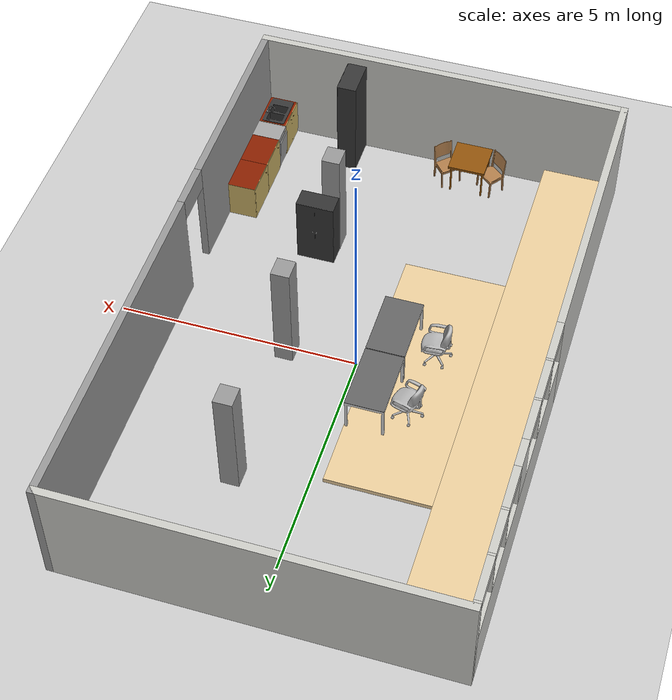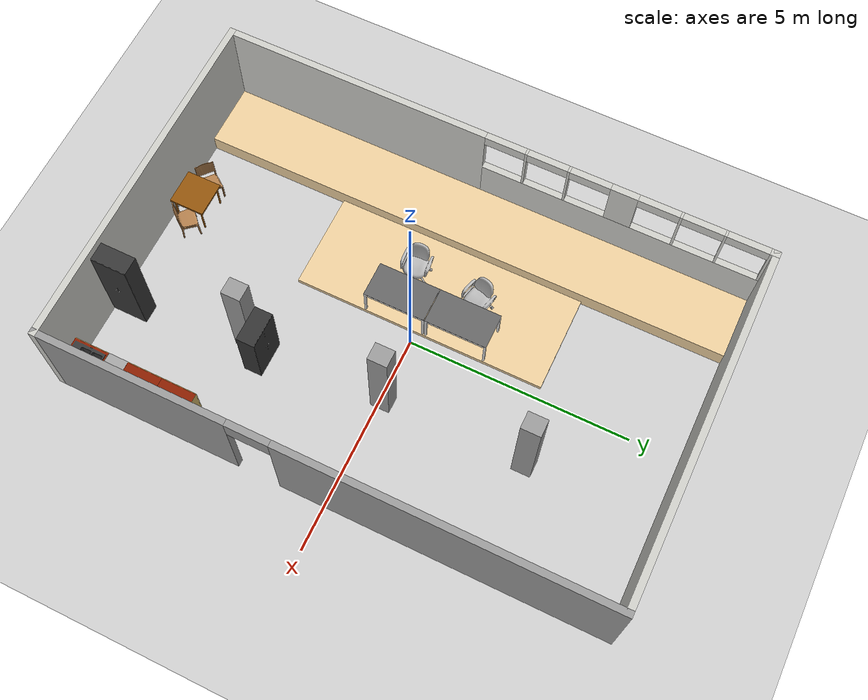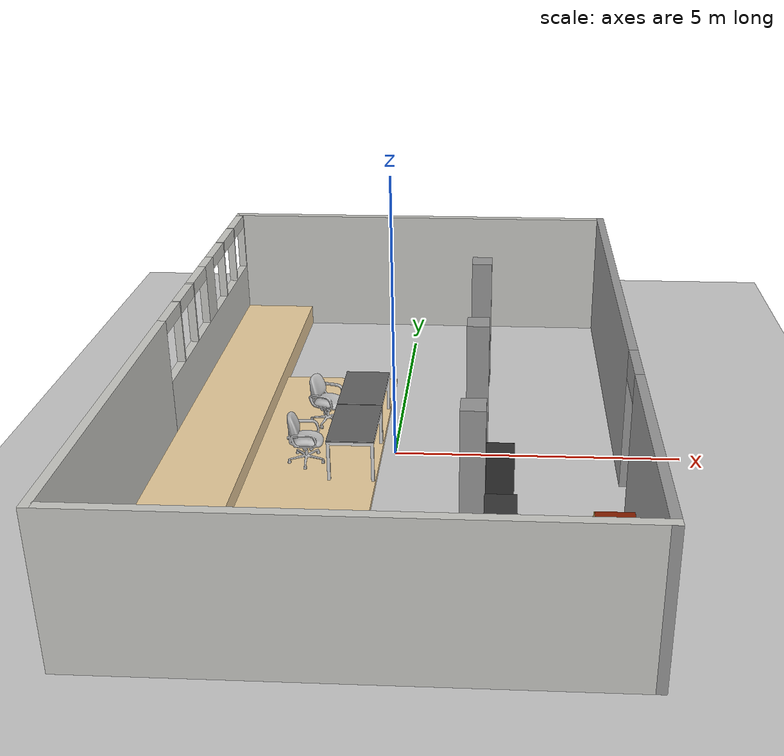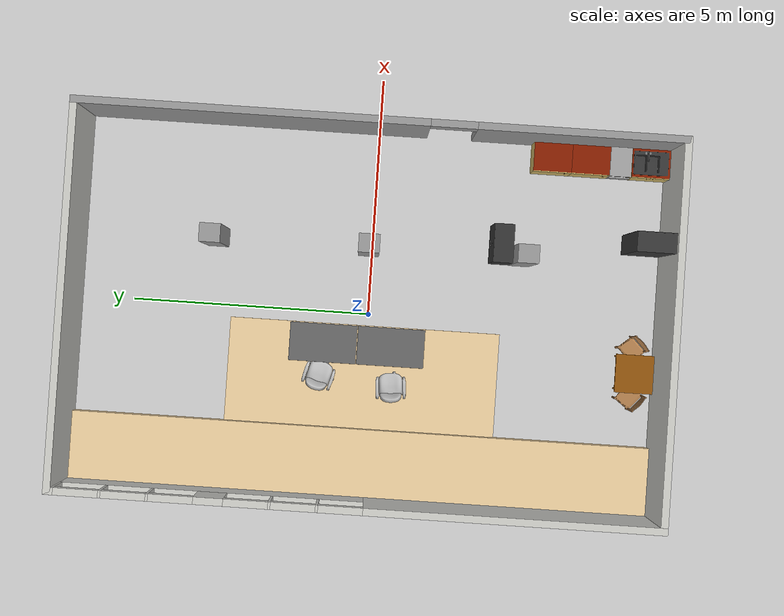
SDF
<sdf version="1.6">
 <world name="default">
  <light name="sun" type="directional">
   <pose>0 0 10 0 -0 0</pose>
   <diffuse>0.8 0.8 0.8 1</diffuse>
   <specular>0.1 0.1 0.1 1</specular>
   <attenuation>
    <range>1000</range>
    <constant>0.9</constant>
    <linear>0.01</linear>
    <quadratic>0.001</quadratic>
   </attenuation>
   <direction>-0.5 0.5 -1</direction>
  </light>
  <model name="ground_plane">
   <static>1</static>
   <link name="link">
    <collision name="collision">
     <geometry><plane><normal>0 0 1</normal><size>100 100</size></plane></geometry>
     <surface><friction><ode><mu>100</mu><mu2>50</mu2></ode></friction></surface>
    </collision>
    <visual name="visual">
     <cast_shadows>0</cast_shadows>
     <geometry><plane><normal>0 0 1</normal><size>100 100</size></plane></geometry>
     <material>
      <script><uri>file://media/materials/scripts/gazebo.material</uri><name>Gazebo/Grey</name></script>
     </material>
    </visual>
   </link>
  </model>
  <gravity>0 0 -9.8</gravity>
  <magnetic_field>6e-06 2.3e-05 -4.2e-05</magnetic_field>
  <atmosphere type="adiabatic"/>
  <physics name="default_physics" default="0" type="ode">
   <max_step_size>0.001</max_step_size>
   <real_time_factor>1</real_time_factor>
   <real_time_update_rate>1000</real_time_update_rate>
  </physics>
  <scene><ambient>0.4 0.4 0.4 1</ambient><background>0.7 0.7 0.7 1</background><shadows>1</shadows></scene>
  <spherical_coordinates>
   <surface_model>EARTH_WGS84</surface_model>
   <latitude_deg>0</latitude_deg>
   <longitude_deg>0</longitude_deg>
   <elevation>0</elevation>
   <heading_deg>0</heading_deg>
  </spherical_coordinates>
  <model name="012">
   <pose>0 0 0 0 -0 1.5708</pose>
   <link name="Wall_0">
    <collision name="Wall_0_Collision">
     <geometry><box><size>8 0.15 2.5</size></box></geometry>
     <pose>0 0 1.25 0 -0 0</pose>
    </collision>
    <visual name="Wall_0_Visual">
     <pose>0 0 1.25 0 -0 0</pose>
     <geometry><box><size>8 0.15 2.5</size></box></geometry>
     <material>
      <script><uri>file://media/materials/scripts/gazebo.material</uri><name>Gazebo/CeilingTiled</name></script>
      <ambient>1 1 1 1</ambient>
     </material>
    </visual>
    <pose>-6.175 0 0 0 -0 1.5708</pose>
   </link>
   <link name="Wall_1">
    <pose>0 3.925 0 0 -0 0</pose>
    <visual name="Wall_1_Visual_0">
     <pose>-3.19976 0 1.25 0 -0 0</pose>
     <geometry><box><size>6.10047 0.15 2.5</size></box></geometry>
     <material>
      <script><uri>file://media/materials/scripts/gazebo.material</uri><name>Gazebo/CeilingTiled</name></script>
      <ambient>1 1 1 1</ambient>
     </material>
    </visual>
    <collision name="Wall_1_Collision_0">
     <geometry><box><size>6.10047 0.15 2.5</size></box></geometry>
     <pose>-3.19976 0 1.25 0 -0 0</pose>
    </collision>
    <visual name="Wall_1_Visual_1">
     <pose>3.05024 0 0.675 0 -0 0</pose>
     <geometry><box><size>6.39953 0.15 1.35</size></box></geometry>
     <material>
      <script><uri>file://media/materials/scripts/gazebo.material</uri><name>Gazebo/CeilingTiled</name></script>
      <ambient>1 1 1 1</ambient>
     </material>
    </visual>
    <collision name="Wall_1_Collision_1">
     <geometry><box><size>6.39953 0.15 1.35</size></box></geometry>
     <pose>3.05024 0 0.675 0 -0 0</pose>
    </collision>
    <visual name="Wall_1_Visual_2">
     <pose>0.775327 0 1.925 0 -0 0</pose>
     <geometry><box><size>0.049707 0.15 1.15</size></box></geometry>
     <material>
      <script><uri>file://media/materials/scripts/gazebo.material</uri><name>Gazebo/CeilingTiled</name></script>
      <ambient>1 1 1 1</ambient>
     </material>
    </visual>
    <collision name="Wall_1_Collision_2">
     <geometry><box><size>0.049707 0.15 1.15</size></box></geometry>
     <pose>0.775327 0 1.925 0 -0 0</pose>
    </collision>
    <visual name="Wall_1_Visual_3">
     <pose>1.7249 0 1.925 0 -0 0</pose>
     <geometry><box><size>0.049436 0.15 1.15</size></box></geometry>
     <material>
      <script><uri>file://media/materials/scripts/gazebo.material</uri><name>Gazebo/CeilingTiled</name></script>
      <ambient>1 1 1 1</ambient>
     </material>
    </visual>
    <collision name="Wall_1_Collision_3">
     <geometry><box><size>0.049436 0.15 1.15</size></box></geometry>
     <pose>1.7249 0 1.925 0 -0 0</pose>
    </collision>
    <visual name="Wall_1_Visual_4">
     <pose>2.9496 0 1.925 0 -0 0</pose>
     <geometry><box><size>0.599959 0.15 1.15</size></box></geometry>
     <material>
      <script><uri>file://media/materials/scripts/gazebo.material</uri><name>Gazebo/CeilingTiled</name></script>
      <ambient>1 1 1 1</ambient>
     </material>
    </visual>
    <collision name="Wall_1_Collision_4">
     <geometry><box><size>0.599959 0.15 1.15</size></box></geometry>
     <pose>2.9496 0 1.925 0 -0 0</pose>
    </collision>
    <visual name="Wall_1_Visual_5">
     <pose>4.17483 0 1.925 0 -0 0</pose>
     <geometry><box><size>0.050519 0.15 1.15</size></box></geometry>
     <material>
      <script><uri>file://media/materials/scripts/gazebo.material</uri><name>Gazebo/CeilingTiled</name></script>
      <ambient>1 1 1 1</ambient>
     </material>
    </visual>
    <collision name="Wall_1_Collision_5">
     <geometry><box><size>0.050519 0.15 1.15</size></box></geometry>
     <pose>4.17483 0 1.925 0 -0 0</pose>
    </collision>
    <visual name="Wall_1_Visual_6">
     <pose>5.12512 0 1.925 0 -0 0</pose>
     <geometry><box><size>0.050049 0.15 1.15</size></box></geometry>
     <material>
      <script><uri>file://media/materials/scripts/gazebo.material</uri><name>Gazebo/CeilingTiled</name></script>
      <ambient>1 1 1 1</ambient>
     </material>
    </visual>
    <collision name="Wall_1_Collision_6">
     <geometry><box><size>0.050049 0.15 1.15</size></box></geometry>
     <pose>5.12512 0 1.925 0 -0 0</pose>
    </collision>
    <visual name="Wall_1_Visual_7">
     <pose>6.15007 0 1.925 0 -0 0</pose>
     <geometry><box><size>0.199856 0.15 1.15</size></box></geometry>
     <material>
      <script><uri>file://media/materials/scripts/gazebo.material</uri><name>Gazebo/CeilingTiled</name></script>
      <ambient>1 1 1 1</ambient>
     </material>
    </visual>
    <collision name="Wall_1_Collision_7">
     <geometry><box><size>0.199856 0.15 1.15</size></box></geometry>
     <pose>6.15007 0 1.925 0 -0 0</pose>
    </collision>
    <visual name="Wall_1_Visual_8">
     <pose>0.300473 0 2.375 0 -0 0</pose>
     <geometry><box><size>0.9 0.15 0.25</size></box></geometry>
     <material>
      <script><uri>file://media/materials/scripts/gazebo.material</uri><name>Gazebo/CeilingTiled</name></script>
      <ambient>1 1 1 1</ambient>
     </material>
    </visual>
    <collision name="Wall_1_Collision_8">
     <geometry><box><size>0.9 0.15 0.25</size></box></geometry>
     <pose>0.300473 0 2.375 0 -0 0</pose>
    </collision>
    <visual name="Wall_1_Visual_9">
     <pose>1.25018 0 2.375 0 -0 0</pose>
     <geometry><box><size>0.9 0.15 0.25</size></box></geometry>
     <material>
      <script><uri>file://media/materials/scripts/gazebo.material</uri><name>Gazebo/CeilingTiled</name></script>
      <ambient>1 1 1 1</ambient>
     </material>
    </visual>
    <collision name="Wall_1_Collision_9">
     <geometry><box><size>0.9 0.15 0.25</size></box></geometry>
     <pose>1.25018 0 2.375 0 -0 0</pose>
    </collision>
    <visual name="Wall_1_Visual_10">
     <pose>2.19962 0 2.375 0 -0 0</pose>
     <geometry><box><size>0.9 0.15 0.25</size></box></geometry>
     <material>
      <script><uri>file://media/materials/scripts/gazebo.material</uri><name>Gazebo/CeilingTiled</name></script>
      <ambient>1 1 1 1</ambient>
     </material>
    </visual>
    <collision name="Wall_1_Collision_10">
     <geometry><box><size>0.9 0.15 0.25</size></box></geometry>
     <pose>2.19962 0 2.375 0 -0 0</pose>
    </collision>
    <visual name="Wall_1_Visual_11">
     <pose>3.69958 0 2.375 0 -0 0</pose>
     <geometry><box><size>0.9 0.15 0.25</size></box></geometry>
     <material>
      <script><uri>file://media/materials/scripts/gazebo.material</uri><name>Gazebo/CeilingTiled</name></script>
      <ambient>1 1 1 1</ambient>
     </material>
    </visual>
    <collision name="Wall_1_Collision_11">
     <geometry><box><size>0.9 0.15 0.25</size></box></geometry>
     <pose>3.69958 0 2.375 0 -0 0</pose>
    </collision>
    <visual name="Wall_1_Visual_12">
     <pose>4.65009 0 2.375 0 -0 0</pose>
     <geometry><box><size>0.9 0.15 0.25</size></box></geometry>
     <material>
      <script><uri>file://media/materials/scripts/gazebo.material</uri><name>Gazebo/CeilingTiled</name></script>
      <ambient>1 1 1 1</ambient>
     </material>
    </visual>
    <collision name="Wall_1_Collision_12">
     <geometry><box><size>0.9 0.15 0.25</size></box></geometry>
     <pose>4.65009 0 2.375 0 -0 0</pose>
    </collision>
    <visual name="Wall_1_Visual_13">
     <pose>5.60014 0 2.375 0 -0 0</pose>
     <geometry><box><size>0.9 0.15 0.25</size></box></geometry>
     <material>
      <script><uri>file://media/materials/scripts/gazebo.material</uri><name>Gazebo/CeilingTiled</name></script>
      <ambient>1 1 1 1</ambient>
     </material>
    </visual>
    <collision name="Wall_1_Collision_13">
     <geometry><box><size>0.9 0.15 0.25</size></box></geometry>
     <pose>5.60014 0 2.375 0 -0 0</pose>
    </collision>
   </link>
   <link name="Wall_2">
    <collision name="Wall_2_Collision">
     <geometry><box><size>8 0.15 2.5</size></box></geometry>
     <pose>0 0 1.25 0 -0 0</pose>
    </collision>
    <visual name="Wall_2_Visual">
     <pose>0 0 1.25 0 -0 0</pose>
     <geometry><box><size>8 0.15 2.5</size></box></geometry>
     <material>
      <script><uri>file://media/materials/scripts/gazebo.material</uri><name>Gazebo/CeilingTiled</name></script>
      <ambient>1 1 1 1</ambient>
     </material>
    </visual>
    <pose>6.175 0 0 0 0 -1.5708</pose>
   </link>
   <link name="Wall_3">
    <pose>0 -3.925 0 0 -0 3.14159</pose>
    <visual name="Wall_3_Visual_0">
     <pose>-2.6248 0 1.25 0 -0 0</pose>
     <geometry><box><size>7.25041 0.15 2.5</size></box></geometry>
     <material>
      <script><uri>file://media/materials/scripts/gazebo.material</uri><name>Gazebo/Grey</name></script>
      <ambient>1 1 1 1</ambient>
     </material>
    </visual>
    <collision name="Wall_3_Collision_0">
     <geometry><box><size>7.25041 0.15 2.5</size></box></geometry>
     <pose>-2.6248 0 1.25 0 -0 0</pose>
    </collision>
    <visual name="Wall_3_Visual_1">
     <pose>4.1002 0 1.25 0 -0 0</pose>
     <geometry><box><size>4.29959 0.15 2.5</size></box></geometry>
     <material>
      <script><uri>file://media/materials/scripts/gazebo.material</uri><name>Gazebo/Grey</name></script>
      <ambient>1 1 1 1</ambient>
     </material>
    </visual>
    <collision name="Wall_3_Collision_1">
     <geometry><box><size>4.29959 0.15 2.5</size></box></geometry>
     <pose>4.1002 0 1.25 0 -0 0</pose>
    </collision>
    <visual name="Wall_3_Visual_2">
     <pose>1.47541 0 2.25 0 -0 0</pose>
     <geometry><box><size>0.95 0.15 0.5</size></box></geometry>
     <material>
      <script><uri>file://media/materials/scripts/gazebo.material</uri><name>Gazebo/Grey</name></script>
      <ambient>1 1 1 1</ambient>
     </material>
    </visual>
    <collision name="Wall_3_Collision_2">
     <geometry><box><size>0.95 0.15 0.5</size></box></geometry>
     <pose>1.47541 0 2.25 0 -0 0</pose>
    </collision>
   </link>
   <static>1</static>
  </model>
  <model name="012_step_back">
   <pose>-3.15276 0 0 0 -0 1.5708</pose>
   <link name="Stairs_5">
    <visual name="Stairs_5_Visual_0">
     <pose>0 0 0.2 0 -0 0</pose>
     <geometry><box><size>12.387 1.451 0.4</size></box></geometry>
     <material>
      <script><uri>file://media/materials/scripts/gazebo.material</uri><name>Gazebo/Grey</name></script>
      <ambient>0.921569 0.807843 0.615686 1</ambient>
     </material>
    </visual>
    <collision name="Stairs_5_Collision_0">
     <geometry><box><size>12.387 1.451 0.4</size></box></geometry>
     <pose>0 0 0.2 0 -0 0</pose>
    </collision>
   </link>
   <static>1</static>
  </model>
  <model name="012_step_central">
   <pose>-1.40245 0.05011 0 0 -0 1.5708</pose>
   <link name="Stairs_3">
    <visual name="Stairs_3_Visual_0">
     <pose>0 0 0.05 0 -0 0</pose>
     <geometry><box><size>5.735 2.335 0.1</size></box></geometry>
     <material>
      <script><uri>file://media/materials/scripts/gazebo.material</uri><name>Gazebo/Grey</name></script>
      <ambient>0.921569 0.807843 0.615686 1</ambient>
     </material>
    </visual>
    <collision name="Stairs_3_Collision_0">
     <geometry><box><size>5.735 2.335 0.1</size></box></geometry>
     <pose>0 0 0.05 0 -0 0</pose>
    </collision>
   </link>
   <static>1</static>
  </model>
  <model name="012_pillar">
   <pose>1.4352 -3.125 0 0 0 -1.5708</pose>
   <link name="Wall_6">
    <collision name="Wall_6_Collision">
     <geometry><box><size>0.43 0.38 2.5</size></box></geometry>
     <pose>0 0 1.25 0 -0 0</pose>
    </collision>
    <visual name="Wall_6_Visual">
     <pose>0 0 1.25 0 -0 0</pose>
     <geometry><box><size>0.43 0.38 2.5</size></box></geometry>
     <material>
      <script><uri>file://media/materials/scripts/gazebo.material</uri><name>Gazebo/Grey</name></script>
      <ambient>1 1 1 1</ambient>
     </material>
    </visual>
   </link>
   <static>1</static>
  </model>
  <model name="012_pillar_clone">
   <pose>1.4352 0.075 0 0 0 -1.5708</pose>
   <link name="Wall_6">
    <collision name="Wall_6_Collision">
     <geometry><box><size>0.43 0.38 2.5</size></box></geometry>
     <pose>0 0 1.25 0 -0 0</pose>
    </collision>
    <visual name="Wall_6_Visual">
     <pose>0 0 1.25 0 -0 0</pose>
     <geometry><box><size>0.43 0.38 2.5</size></box></geometry>
     <material>
      <script><uri>file://media/materials/scripts/gazebo.material</uri><name>Gazebo/Grey</name></script>
      <ambient>1 1 1 1</ambient>
     </material>
    </visual>
   </link>
   <static>1</static>
  </model>
  <model name="012_pillar_clone_clone">
   <pose>1.4352 3.275 0 0 0 -1.5708</pose>
   <link name="Wall_6">
    <collision name="Wall_6_Collision">
     <geometry><box><size>0.43 0.38 2.5</size></box></geometry>
     <pose>0 0 1.25 0 -0 0</pose>
    </collision>
    <visual name="Wall_6_Visual">
     <pose>0 0 1.25 0 -0 0</pose>
     <geometry><box><size>0.43 0.38 2.5</size></box></geometry>
     <material>
      <script><uri>file://media/materials/scripts/gazebo.material</uri><name>Gazebo/Grey</name></script>
      <ambient>1 1 1 1</ambient>
     </material>
    </visual>
   </link>
   <static>1</static>
  </model>
  <model name="rectangle_table">
   <static>1</static>
   <link name="rectangle_table">
    <collision name="surface">
     <pose>0 0 0.7 0 -0 0</pose>
     <geometry><box><size>1.4 0.8 0.079</size></box></geometry>
     <surface><friction><ode><mu>0.6</mu><mu2>0.6</mu2></ode></friction></surface>
    </collision>
    <collision name="left_front_leg">
     <pose>-0.6764 0.3733 0.3305 0 -0 0</pose>
     <geometry><box><size>0.0467 0.0534 0.661</size></box></geometry>
    </collision>
    <collision name="right_front_leg">
     <pose>0.6764 0.3733 0.3305 0 -0 0</pose>
     <geometry><box><size>0.0467 0.0534 0.661</size></box></geometry>
    </collision>
    <collision name="left_back_leg">
     <pose>-0.6764 -0.3733 0.3305 0 -0 0</pose>
     <geometry><box><size>0.0467 0.0534 0.661</size></box></geometry>
    </collision>
    <collision name="right_back_leg">
     <pose>0.6764 -0.3733 0.3305 0 -0 0</pose>
     <geometry><box><size>0.0467 0.0534 0.661</size></box></geometry>
    </collision>
    <visual name="rectangle_table_mesh">
     <geometry><mesh><uri>model://rectangle_table/meshes/model.dae</uri><scale>1 1 1</scale></mesh></geometry>
    </visual>
   </link>
   <pose>-0.647988 -0.512943 0.1 0 0 -1.5708</pose>
  </model>
  <model name="locker_high">
   <static>1</static>
   <link name="locker_high">
    <collision name="locker_high">
     <pose>0 0 1.15 0 -0 0</pose>
     <geometry><box><size>0.44 0.8 2.3</size></box></geometry>
    </collision>
    <visual name="locker_high_mesh">
     <geometry><mesh><uri>model://locker_high/meshes/model.dae</uri><scale>1 1 1</scale></mesh></geometry>
    </visual>
   </link>
   <pose>1.8452 -5.7 0 0 -0 0</pose>
  </model>
  <model name="locker_small">
   <static>1</static>
   <link name="locker_small">
    <collision name="locker_small">
     <pose>0 0 0.775 0 -0 0</pose>
     <geometry><box><size>0.44 0.8 1.55</size></box></geometry>
    </collision>
    <visual name="locker_small_mesh">
     <geometry><mesh><uri>model://locker_small/meshes/model.dae</uri><scale>1 1 1</scale></mesh></geometry>
    </visual>
   </link>
   <pose>1.65271 -2.6794 0 0 -0 1.5708</pose>
  </model>
  <model name="sink">
   <static>1</static>
   <link name="sink">
    <collision name="sink">
     <pose>0 0 0.4398 0 -0 0</pose>
     <geometry><box><size>0.64 0.8 0.8796</size></box></geometry>
    </collision>
    <collision name="tap">
     <pose>-0.15 -0.0775 0.9746 0 -0 0</pose>
     <geometry><box><size>0.22 0.13 0.19</size></box></geometry>
    </collision>
    <visual name="sink_mesh">
     <geometry><mesh><uri>model://sink/meshes/model.dae</uri><scale>1 1 1</scale></mesh></geometry>
    </visual>
   </link>
   <pose>3.52998 -5.69531 0 0 0 -3.14159</pose>
  </model>
  <model name="dishwasher">
   <static>1</static>
   <link name="dishwasher">
    <collision name="dishwasher">
     <pose>0 0 0.425 0 -0 0</pose>
     <geometry><box><size>0.65 0.45 0.85</size></box></geometry>
    </collision>
    <visual name="dishwasher_mesh">
     <geometry><mesh><uri>model://dishwasher/meshes/model.dae</uri><scale>1 1 1</scale></mesh></geometry>
    </visual>
   </link>
   <pose>3.52499 -5.07031 0 0 0 -3.14159</pose>
  </model>
  <model name="cupboard">
   <static>1</static>
   <link name="cupboard">
    <collision name="cupboard">
     <pose>0 0 0.425 0 -0 0</pose>
     <geometry><box><size>0.64 0.8 0.85</size></box></geometry>
    </collision>
    <visual name="cupboard_mesh">
     <geometry><mesh><uri>model://cupboard/meshes/model.dae</uri><scale>1 1 1</scale></mesh></geometry>
    </visual>
   </link>
   <pose>3.52999 -4.44463 0 0 -0 3.14159</pose>
  </model>
  <model name="cupboard_clone">
   <static>1</static>
   <link name="cupboard">
    <collision name="cupboard">
     <pose>0 0 0.425 0 -0 0</pose>
     <geometry><box><size>0.64 0.8 0.85</size></box></geometry>
    </collision>
    <visual name="cupboard_mesh">
     <geometry><mesh><uri>model://cupboard/meshes/model.dae</uri><scale>1 1 1</scale></mesh></geometry>
    </visual>
   </link>
   <pose>3.52999 -3.64445 0 0 -0 3.14159</pose>
  </model>
  <model name="square_table">
   <static>1</static>
   <link name="table_link">
    <collision name="surface">
     <pose>0 0 0.7115 0 -0 0</pose>
     <geometry><box><size>0.8 0.8 0.057</size></box></geometry>
     <surface><friction><ode><mu>0.6</mu><mu2>0.6</mu2></ode></friction></surface>
    </collision>
    <collision name="front_left_leg">
     <pose>0.3412 0.3212 0.3415 0 -0 0</pose>
     <geometry><cylinder><radius>0.02</radius><length>0.683</length></cylinder></geometry>
    </collision>
    <collision name="front_right_leg">
     <pose>0.3412 -0.3212 0.3415 0 -0 0</pose>
     <geometry><cylinder><radius>0.02</radius><length>0.683</length></cylinder></geometry>
    </collision>
    <collision name="back_right_leg">
     <pose>-0.3412 -0.3212 0.3415 0 -0 0</pose>
     <geometry><cylinder><radius>0.02</radius><length>0.683</length></cylinder></geometry>
    </collision>
    <collision name="back_left_leg">
     <pose>-0.3412 0.3212 0.3415 0 -0 0</pose>
     <geometry><cylinder><radius>0.02</radius><length>0.683</length></cylinder></geometry>
    </collision>
    <visual name="table_mesh">
     <geometry><mesh><uri>model://square_table/meshes/model.dae</uri><scale>1 1 1</scale></mesh></geometry>
    </visual>
   </link>
   <pose>-0.871873 -5.64133 0 0 -0 0</pose>
  </model>
  <model name="chair">
   <static>1</static>
   <link name="chair">
    <collision name="chair">
     <geometry><mesh><uri>model://chair/meshes/model.dae</uri><scale>1 1 1</scale></mesh></geometry>
    </collision>
    <visual name="chair_mesh">
     <geometry><mesh><uri>model://chair/meshes/model.dae</uri><scale>1 1 1</scale></mesh></geometry>
     <material>
      <script>
       <uri>model://chair/materials/scripts</uri>
       <uri>model://chair/materials/textures</uri>
       <name>Chair/Wood</name>
      </script>
     </material>
    </visual>
   </link>
   <pose>-0.352669 -5.61999 0 0 -0 0.774696</pose>
  </model>
  <model name="chair_0">
   <static>1</static>
   <link name="chair">
    <collision name="chair">
     <geometry><mesh><uri>model://chair/meshes/model.dae</uri><scale>1 1 1</scale></mesh></geometry>
    </collision>
    <visual name="chair_mesh">
     <geometry><mesh><uri>model://chair/meshes/model.dae</uri><scale>1 1 1</scale></mesh></geometry>
     <material>
      <script>
       <uri>model://chair/materials/scripts</uri>
       <uri>model://chair/materials/textures</uri>
       <name>Chair/Wood</name>
      </script>
     </material>
    </visual>
   </link>
   <pose>-1.37344 -5.61724 0 0 0 -0.716758</pose>
  </model>
  <model name="rectangle_table_clone">
   <static>1</static>
   <link name="rectangle_table">
    <collision name="surface">
     <pose>0 0 0.7 0 -0 0</pose>
     <geometry><box><size>1.4 0.8 0.079</size></box></geometry>
     <surface><friction><ode><mu>0.6</mu><mu2>0.6</mu2></ode></friction></surface>
    </collision>
    <collision name="left_front_leg">
     <pose>-0.6764 0.3733 0.3305 0 -0 0</pose>
     <geometry><box><size>0.0467 0.0534 0.661</size></box></geometry>
    </collision>
    <collision name="right_front_leg">
     <pose>0.6764 0.3733 0.3305 0 -0 0</pose>
     <geometry><box><size>0.0467 0.0534 0.661</size></box></geometry>
    </collision>
    <collision name="left_back_leg">
     <pose>-0.6764 -0.3733 0.3305 0 -0 0</pose>
     <geometry><box><size>0.0467 0.0534 0.661</size></box></geometry>
    </collision>
    <collision name="right_back_leg">
     <pose>0.6764 -0.3733 0.3305 0 -0 0</pose>
     <geometry><box><size>0.0467 0.0534 0.661</size></box></geometry>
    </collision>
    <visual name="rectangle_table_mesh">
     <geometry><mesh><uri>model://rectangle_table/meshes/model.dae</uri><scale>1 1 1</scale></mesh></geometry>
    </visual>
   </link>
   <pose>-0.647989 0.90469 0.1 0 0 -1.5708</pose>
  </model>
  <model name="swivel_chair">
   <static>1</static>
   <link name="swivel_chair">
    <collision name="swivel_chair">
     <geometry><mesh><uri>model://swivel_chair/meshes/model.dae</uri><scale>1 1 1</scale></mesh></geometry>
    </collision>
    <visual name="swivel_chair_mesh">
     <geometry><mesh><uri>model://swivel_chair/meshes/model.dae</uri><scale>1 1 1</scale></mesh></geometry>
     <material>
      <script>
       <uri>model://swivel_chair/materials/scripts</uri>
       <uri>model://swivel_chair/materials/textures</uri>
       <name>Swivel_chair/Fabric</name>
      </script>
     </material>
    </visual>
   </link>
   <pose>-1.55047 -0.573463 0.1 0 -0 1.63977</pose>
  </model>
  <model name="swivel_chair_clone">
   <static>1</static>
   <link name="swivel_chair">
    <collision name="swivel_chair">
     <geometry><mesh><uri>model://swivel_chair/meshes/model.dae</uri><scale>1 1 1</scale></mesh></geometry>
    </collision>
    <visual name="swivel_chair_mesh">
     <geometry><mesh><uri>model://swivel_chair/meshes/model.dae</uri><scale>1 1 1</scale></mesh></geometry>
     <material>
      <script>
       <uri>model://swivel_chair/materials/scripts</uri>
       <uri>model://swivel_chair/materials/textures</uri>
       <name>Swivel_chair/Fabric</name>
      </script>
     </material>
    </visual>
   </link>
   <pose>-1.39111 0.969642 0.1 0 -0 1.30118</pose>
  </model>
 </world>
</sdf>
